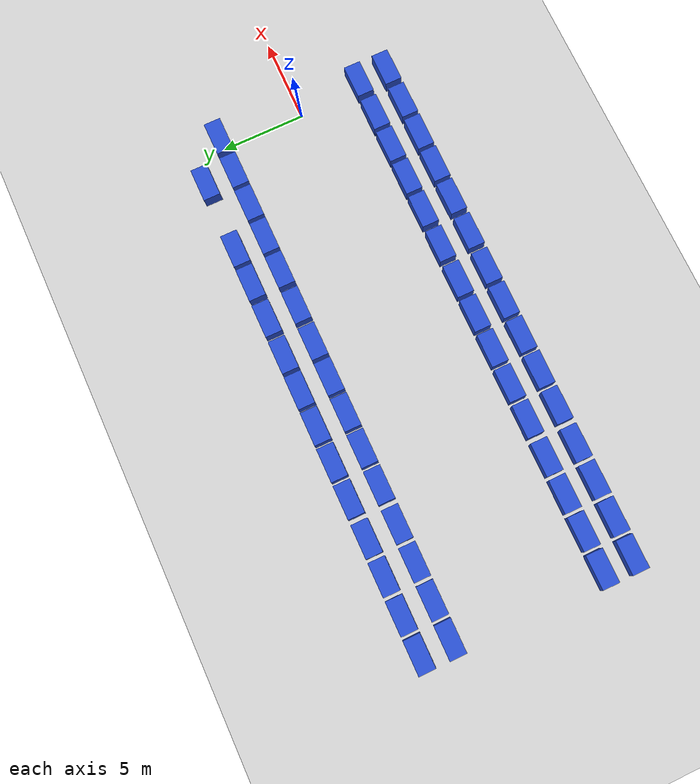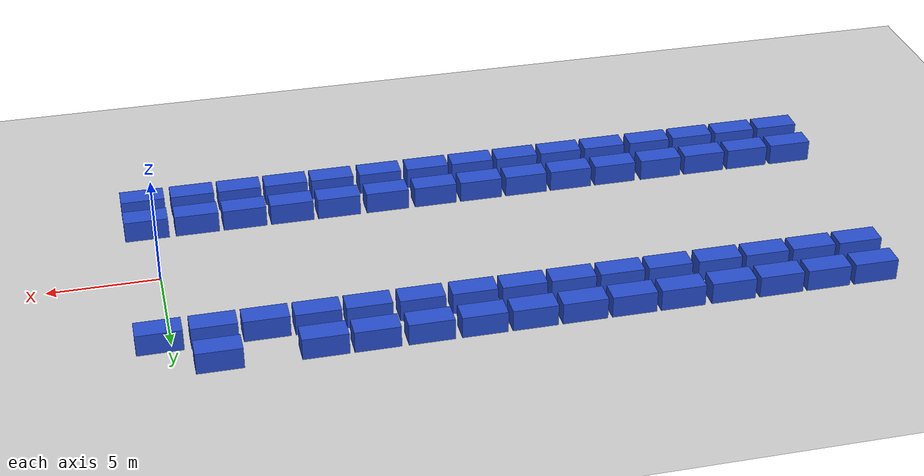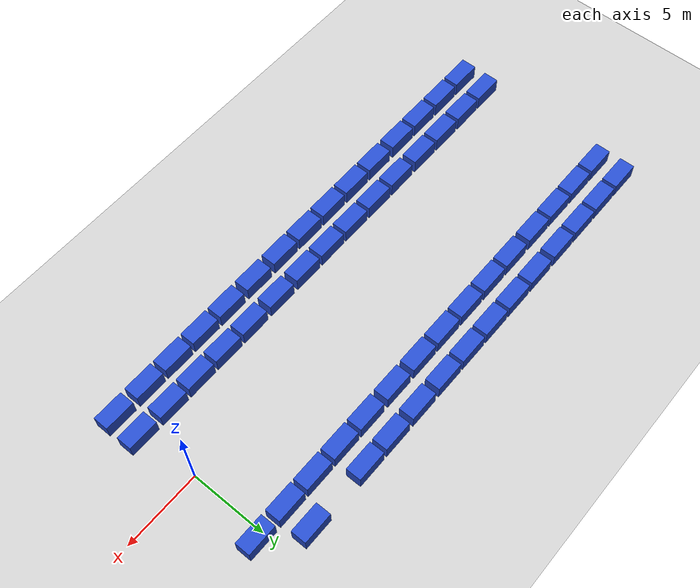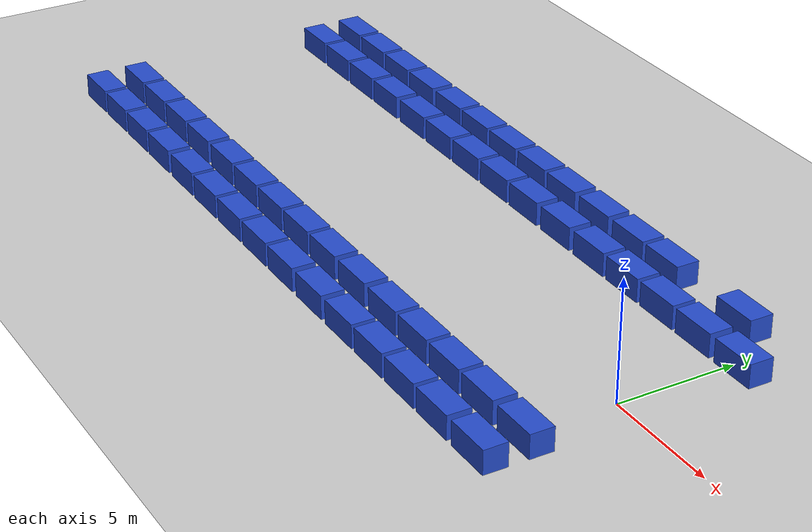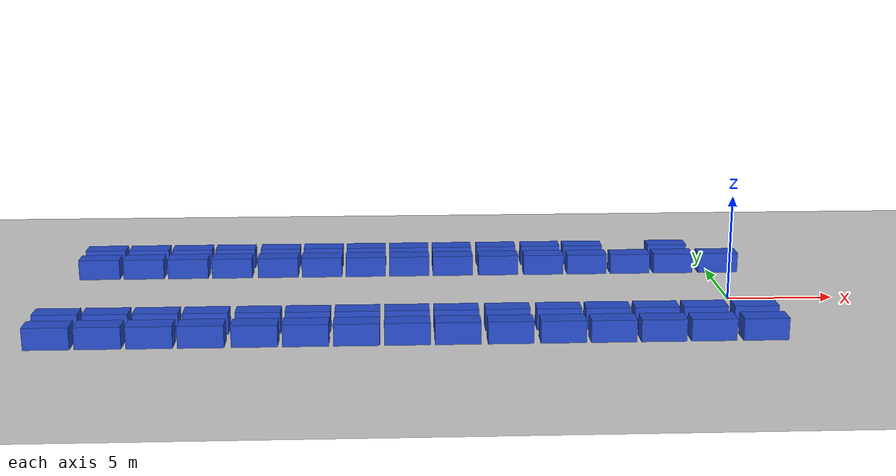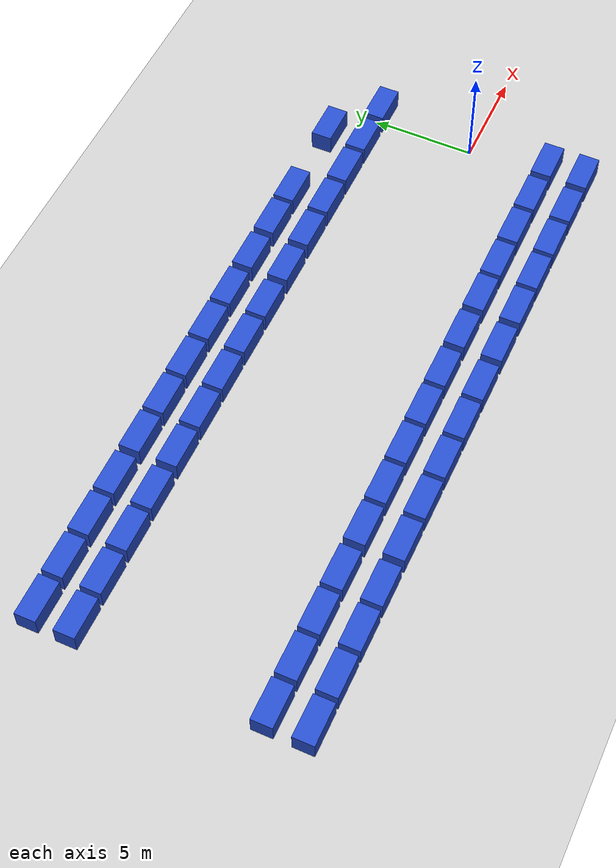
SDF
<sdf version="1.6">
 <world name="default">
  <model name="ground_plane">
   <static>1</static>
   <link name="link">
    <collision name="collision">
     <geometry><plane><normal>0 0 1</normal><size>100 100</size></plane></geometry>
     <surface><friction><ode><mu>100</mu><mu2>50</mu2></ode></friction></surface>
    </collision>
    <visual name="visual">
     <cast_shadows>0</cast_shadows>
     <geometry><plane><normal>0 0 1</normal><size>100 100</size></plane></geometry>
     <material>
      <script><uri>file://media/materials/scripts/gazebo.material</uri><name>Gazebo/Grey</name></script>
     </material>
    </visual>
   </link>
  </model>
  <model name="box116">
   <link name="blue_box">
    <inertial>
     <pose>2 0 0 0 -0 0</pose>
     <mass>1</mass>
     <inertia><ixx>0.17</ixx><ixy>0</ixy><ixz>0</ixz><iyy>0.42</iyy><iyz>0</iyz><izz>0.42</izz></inertia>
    </inertial>
    <collision name="blue_box_collision">
     <pose>2 0 1 0 -0 0</pose>
     <geometry><box><size>2 1 1</size></box></geometry>
    </collision>
    <visual name="blue_box_visual">
     <pose>2 0 1 0 -0 0</pose>
     <geometry><box><size>2 1 1</size></box></geometry>
     <material>
      <script><name>Gazebo/Blue</name><uri>file://media/materials/scripts/gazebo.material</uri></script>
     </material>
    </visual>
    <gravity>0</gravity>
   </link>
   <pose>-32.7 6.79962 -0.500378 -0.000755 0 0</pose>
  </model>
  <model name="box117">
   <link name="blue_box">
    <inertial>
     <pose>2 0 0 0 -0 0</pose>
     <mass>1</mass>
     <inertia><ixx>0.17</ixx><ixy>0</ixy><ixz>0</ixz><iyy>0.42</iyy><iyz>0</iyz><izz>0.42</izz></inertia>
    </inertial>
    <collision name="blue_box_collision">
     <pose>2 0 1 0 -0 0</pose>
     <geometry><box><size>2 1 1</size></box></geometry>
    </collision>
    <visual name="blue_box_visual">
     <pose>2 0 1 0 -0 0</pose>
     <geometry><box><size>2 1 1</size></box></geometry>
     <material>
      <script><name>Gazebo/Blue</name><uri>file://media/materials/scripts/gazebo.material</uri></script>
     </material>
    </visual>
    <gravity>0</gravity>
   </link>
   <pose>-30.5 6.80038 -0.500378 0.000755 -0 0</pose>
  </model>
  <model name="box118">
   <link name="blue_box">
    <inertial>
     <pose>2 0 0 0 -0 0</pose>
     <mass>1</mass>
     <inertia><ixx>0.17</ixx><ixy>0</ixy><ixz>0</ixz><iyy>0.42</iyy><iyz>0</iyz><izz>0.42</izz></inertia>
    </inertial>
    <collision name="blue_box_collision">
     <pose>2 0 1 0 -0 0</pose>
     <geometry><box><size>2 1 1</size></box></geometry>
    </collision>
    <visual name="blue_box_visual">
     <pose>2 0 1 0 -0 0</pose>
     <geometry><box><size>2 1 1</size></box></geometry>
     <material>
      <script><name>Gazebo/Blue</name><uri>file://media/materials/scripts/gazebo.material</uri></script>
     </material>
    </visual>
    <gravity>0</gravity>
   </link>
   <pose>-28.3 6.79962 -0.500378 -0.000755 0 0</pose>
  </model>
  <model name="box119">
   <link name="blue_box">
    <inertial>
     <pose>2 0 0 0 -0 0</pose>
     <mass>1</mass>
     <inertia><ixx>0.17</ixx><ixy>0</ixy><ixz>0</ixz><iyy>0.42</iyy><iyz>0</iyz><izz>0.42</izz></inertia>
    </inertial>
    <collision name="blue_box_collision">
     <pose>2 0 1 0 -0 0</pose>
     <geometry><box><size>2 1 1</size></box></geometry>
    </collision>
    <visual name="blue_box_visual">
     <pose>2 0 1 0 -0 0</pose>
     <geometry><box><size>2 1 1</size></box></geometry>
     <material>
      <script><name>Gazebo/Blue</name><uri>file://media/materials/scripts/gazebo.material</uri></script>
     </material>
    </visual>
    <gravity>0</gravity>
   </link>
   <pose>-26.1 6.80038 -0.500378 0.000755 -0 0</pose>
  </model>
  <model name="box120">
   <link name="blue_box">
    <inertial>
     <pose>2 0 0 0 -0 0</pose>
     <mass>1</mass>
     <inertia><ixx>0.17</ixx><ixy>0</ixy><ixz>0</ixz><iyy>0.42</iyy><iyz>0</iyz><izz>0.42</izz></inertia>
    </inertial>
    <collision name="blue_box_collision">
     <pose>2 0 1 0 -0 0</pose>
     <geometry><box><size>2 1 1</size></box></geometry>
    </collision>
    <visual name="blue_box_visual">
     <pose>2 0 1 0 -0 0</pose>
     <geometry><box><size>2 1 1</size></box></geometry>
     <material>
      <script><name>Gazebo/Blue</name><uri>file://media/materials/scripts/gazebo.material</uri></script>
     </material>
    </visual>
    <gravity>0</gravity>
   </link>
   <pose>-23.8 6.79962 -0.500378 -0.000755 0 0</pose>
  </model>
  <model name="box121">
   <link name="blue_box">
    <inertial>
     <pose>2 0 0 0 -0 0</pose>
     <mass>1</mass>
     <inertia><ixx>0.17</ixx><ixy>0</ixy><ixz>0</ixz><iyy>0.42</iyy><iyz>0</iyz><izz>0.42</izz></inertia>
    </inertial>
    <collision name="blue_box_collision">
     <pose>2 0 1 0 -0 0</pose>
     <geometry><box><size>2 1 1</size></box></geometry>
    </collision>
    <visual name="blue_box_visual">
     <pose>2 0 1 0 -0 0</pose>
     <geometry><box><size>2 1 1</size></box></geometry>
     <material>
      <script><name>Gazebo/Blue</name><uri>file://media/materials/scripts/gazebo.material</uri></script>
     </material>
    </visual>
    <gravity>0</gravity>
   </link>
   <pose>-21.6 6.79962 -0.500378 -0.000755 0 0</pose>
  </model>
  <model name="box122">
   <link name="blue_box">
    <inertial>
     <pose>2 0 0 0 -0 0</pose>
     <mass>1</mass>
     <inertia><ixx>0.17</ixx><ixy>0</ixy><ixz>0</ixz><iyy>0.42</iyy><iyz>0</iyz><izz>0.42</izz></inertia>
    </inertial>
    <collision name="blue_box_collision">
     <pose>2 0 1 0 -0 0</pose>
     <geometry><box><size>2 1 1</size></box></geometry>
    </collision>
    <visual name="blue_box_visual">
     <pose>2 0 1 0 -0 0</pose>
     <geometry><box><size>2 1 1</size></box></geometry>
     <material>
      <script><name>Gazebo/Blue</name><uri>file://media/materials/scripts/gazebo.material</uri></script>
     </material>
    </visual>
    <gravity>0</gravity>
   </link>
   <pose>-19.4 6.79962 -0.500378 -0.000755 0 0</pose>
  </model>
  <model name="box123">
   <link name="blue_box">
    <inertial>
     <pose>2 0 0 0 -0 0</pose>
     <mass>1</mass>
     <inertia><ixx>0.17</ixx><ixy>0</ixy><ixz>0</ixz><iyy>0.42</iyy><iyz>0</iyz><izz>0.42</izz></inertia>
    </inertial>
    <collision name="blue_box_collision">
     <pose>2 0 1 0 -0 0</pose>
     <geometry><box><size>2 1 1</size></box></geometry>
    </collision>
    <visual name="blue_box_visual">
     <pose>2 0 1 0 -0 0</pose>
     <geometry><box><size>2 1 1</size></box></geometry>
     <material>
      <script><name>Gazebo/Blue</name><uri>file://media/materials/scripts/gazebo.material</uri></script>
     </material>
    </visual>
    <gravity>0</gravity>
   </link>
   <pose>-17.2 6.80038 -0.500378 0.000755 -0 0</pose>
  </model>
  <model name="box124">
   <link name="blue_box">
    <inertial>
     <pose>2 0 0 0 -0 0</pose>
     <mass>1</mass>
     <inertia><ixx>0.17</ixx><ixy>0</ixy><ixz>0</ixz><iyy>0.42</iyy><iyz>0</iyz><izz>0.42</izz></inertia>
    </inertial>
    <collision name="blue_box_collision">
     <pose>2 0 1 0 -0 0</pose>
     <geometry><box><size>2 1 1</size></box></geometry>
    </collision>
    <visual name="blue_box_visual">
     <pose>2 0 1 0 -0 0</pose>
     <geometry><box><size>2 1 1</size></box></geometry>
     <material>
      <script><name>Gazebo/Blue</name><uri>file://media/materials/scripts/gazebo.material</uri></script>
     </material>
    </visual>
    <gravity>0</gravity>
   </link>
   <pose>-15 6.80038 -0.500378 0.000755 -0 0</pose>
  </model>
  <model name="box125">
   <link name="blue_box">
    <inertial>
     <pose>2 0 0 0 -0 0</pose>
     <mass>1</mass>
     <inertia><ixx>0.17</ixx><ixy>0</ixy><ixz>0</ixz><iyy>0.42</iyy><iyz>0</iyz><izz>0.42</izz></inertia>
    </inertial>
    <collision name="blue_box_collision">
     <pose>2 0 1 0 -0 0</pose>
     <geometry><box><size>2 1 1</size></box></geometry>
    </collision>
    <visual name="blue_box_visual">
     <pose>2 0 1 0 -0 0</pose>
     <geometry><box><size>2 1 1</size></box></geometry>
     <material>
      <script><name>Gazebo/Blue</name><uri>file://media/materials/scripts/gazebo.material</uri></script>
     </material>
    </visual>
    <gravity>0</gravity>
   </link>
   <pose>-12.7 6.80038 -0.500378 0.000755 -0 0</pose>
  </model>
  <model name="box126">
   <link name="blue_box">
    <inertial>
     <pose>2 0 0 0 -0 0</pose>
     <mass>1</mass>
     <inertia><ixx>0.17</ixx><ixy>0</ixy><ixz>0</ixz><iyy>0.42</iyy><iyz>0</iyz><izz>0.42</izz></inertia>
    </inertial>
    <collision name="blue_box_collision">
     <pose>2 0 1 0 -0 0</pose>
     <geometry><box><size>2 1 1</size></box></geometry>
    </collision>
    <visual name="blue_box_visual">
     <pose>2 0 1 0 -0 0</pose>
     <geometry><box><size>2 1 1</size></box></geometry>
     <material>
      <script><name>Gazebo/Blue</name><uri>file://media/materials/scripts/gazebo.material</uri></script>
     </material>
    </visual>
    <gravity>0</gravity>
   </link>
   <pose>-10.4 6.79962 -0.500378 -0.000755 0 0</pose>
  </model>
  <model name="box127">
   <link name="blue_box">
    <inertial>
     <pose>2 0 0 0 -0 0</pose>
     <mass>1</mass>
     <inertia><ixx>0.17</ixx><ixy>0</ixy><ixz>0</ixz><iyy>0.42</iyy><iyz>0</iyz><izz>0.42</izz></inertia>
    </inertial>
    <collision name="blue_box_collision">
     <pose>2 0 1 0 -0 0</pose>
     <geometry><box><size>2 1 1</size></box></geometry>
    </collision>
    <visual name="blue_box_visual">
     <pose>2 0 1 0 -0 0</pose>
     <geometry><box><size>2 1 1</size></box></geometry>
     <material>
      <script><name>Gazebo/Blue</name><uri>file://media/materials/scripts/gazebo.material</uri></script>
     </material>
    </visual>
    <gravity>0</gravity>
   </link>
   <pose>-8.2 6.79962 -0.500378 -0.000755 0 0</pose>
  </model>
  <model name="box129">
   <link name="blue_box">
    <inertial>
     <pose>2 0 0 0 -0 0</pose>
     <mass>1</mass>
     <inertia><ixx>0.17</ixx><ixy>0</ixy><ixz>0</ixz><iyy>0.42</iyy><iyz>0</iyz><izz>0.42</izz></inertia>
    </inertial>
    <collision name="blue_box_collision">
     <pose>2 0 1 0 -0 0</pose>
     <geometry><box><size>2 1 1</size></box></geometry>
    </collision>
    <visual name="blue_box_visual">
     <pose>2 0 1 0 -0 0</pose>
     <geometry><box><size>2 1 1</size></box></geometry>
     <material>
      <script><name>Gazebo/Blue</name><uri>file://media/materials/scripts/gazebo.material</uri></script>
     </material>
    </visual>
    <gravity>0</gravity>
   </link>
   <pose>-3.8 6.79962 -0.500378 -0.000755 0 0</pose>
  </model>
  <model name="box145">
   <link name="blue_box">
    <inertial>
     <pose>2 0 0 0 -0 0</pose>
     <mass>1</mass>
     <inertia><ixx>0.17</ixx><ixy>0</ixy><ixz>0</ixz><iyy>0.42</iyy><iyz>0</iyz><izz>0.42</izz></inertia>
    </inertial>
    <collision name="blue_box_collision">
     <pose>2 0 1 0 -0 0</pose>
     <geometry><box><size>2 1 1</size></box></geometry>
    </collision>
    <visual name="blue_box_visual">
     <pose>2 0 1 0 -0 0</pose>
     <geometry><box><size>2 1 1</size></box></geometry>
     <material>
      <script><name>Gazebo/Blue</name><uri>file://media/materials/scripts/gazebo.material</uri></script>
     </material>
    </visual>
    <gravity>0</gravity>
   </link>
   <pose>-32.7 4.99962 -0.500378 -0.000755 0 0</pose>
  </model>
  <model name="box146">
   <link name="blue_box">
    <inertial>
     <pose>2 0 0 0 -0 0</pose>
     <mass>1</mass>
     <inertia><ixx>0.17</ixx><ixy>0</ixy><ixz>0</ixz><iyy>0.42</iyy><iyz>0</iyz><izz>0.42</izz></inertia>
    </inertial>
    <collision name="blue_box_collision">
     <pose>2 0 1 0 -0 0</pose>
     <geometry><box><size>2 1 1</size></box></geometry>
    </collision>
    <visual name="blue_box_visual">
     <pose>2 0 1 0 -0 0</pose>
     <geometry><box><size>2 1 1</size></box></geometry>
     <material>
      <script><name>Gazebo/Blue</name><uri>file://media/materials/scripts/gazebo.material</uri></script>
     </material>
    </visual>
    <gravity>0</gravity>
   </link>
   <pose>-30.5 5.00038 -0.500378 0.000755 -0 0</pose>
  </model>
  <model name="box147">
   <link name="blue_box">
    <inertial>
     <pose>2 0 0 0 -0 0</pose>
     <mass>1</mass>
     <inertia><ixx>0.17</ixx><ixy>0</ixy><ixz>0</ixz><iyy>0.42</iyy><iyz>0</iyz><izz>0.42</izz></inertia>
    </inertial>
    <collision name="blue_box_collision">
     <pose>2 0 1 0 -0 0</pose>
     <geometry><box><size>2 1 1</size></box></geometry>
    </collision>
    <visual name="blue_box_visual">
     <pose>2 0 1 0 -0 0</pose>
     <geometry><box><size>2 1 1</size></box></geometry>
     <material>
      <script><name>Gazebo/Blue</name><uri>file://media/materials/scripts/gazebo.material</uri></script>
     </material>
    </visual>
    <gravity>0</gravity>
   </link>
   <pose>-28.3 5.00038 -0.500378 0.000755 -0 0</pose>
  </model>
  <model name="box148">
   <link name="blue_box">
    <inertial>
     <pose>2 0 0 0 -0 0</pose>
     <mass>1</mass>
     <inertia><ixx>0.17</ixx><ixy>0</ixy><ixz>0</ixz><iyy>0.42</iyy><iyz>0</iyz><izz>0.42</izz></inertia>
    </inertial>
    <collision name="blue_box_collision">
     <pose>2 0 1 0 -0 0</pose>
     <geometry><box><size>2 1 1</size></box></geometry>
    </collision>
    <visual name="blue_box_visual">
     <pose>2 0 1 0 -0 0</pose>
     <geometry><box><size>2 1 1</size></box></geometry>
     <material>
      <script><name>Gazebo/Blue</name><uri>file://media/materials/scripts/gazebo.material</uri></script>
     </material>
    </visual>
    <gravity>0</gravity>
   </link>
   <pose>-26.1 5.00038 -0.500378 0.000755 -0 0</pose>
  </model>
  <model name="box149">
   <link name="blue_box">
    <inertial>
     <pose>2 0 0 0 -0 0</pose>
     <mass>1</mass>
     <inertia><ixx>0.17</ixx><ixy>0</ixy><ixz>0</ixz><iyy>0.42</iyy><iyz>0</iyz><izz>0.42</izz></inertia>
    </inertial>
    <collision name="blue_box_collision">
     <pose>2 0 1 0 -0 0</pose>
     <geometry><box><size>2 1 1</size></box></geometry>
    </collision>
    <visual name="blue_box_visual">
     <pose>2 0 1 0 -0 0</pose>
     <geometry><box><size>2 1 1</size></box></geometry>
     <material>
      <script><name>Gazebo/Blue</name><uri>file://media/materials/scripts/gazebo.material</uri></script>
     </material>
    </visual>
    <gravity>0</gravity>
   </link>
   <pose>-23.8 5.00038 -0.500378 0.000755 -0 0</pose>
  </model>
  <model name="box150">
   <link name="blue_box">
    <inertial>
     <pose>2 0 0 0 -0 0</pose>
     <mass>1</mass>
     <inertia><ixx>0.17</ixx><ixy>0</ixy><ixz>0</ixz><iyy>0.42</iyy><iyz>0</iyz><izz>0.42</izz></inertia>
    </inertial>
    <collision name="blue_box_collision">
     <pose>2 0 1 0 -0 0</pose>
     <geometry><box><size>2 1 1</size></box></geometry>
    </collision>
    <visual name="blue_box_visual">
     <pose>2 0 1 0 -0 0</pose>
     <geometry><box><size>2 1 1</size></box></geometry>
     <material>
      <script><name>Gazebo/Blue</name><uri>file://media/materials/scripts/gazebo.material</uri></script>
     </material>
    </visual>
    <gravity>0</gravity>
   </link>
   <pose>-21.6 5.00038 -0.500378 0.000755 -0 0</pose>
  </model>
  <model name="box151">
   <link name="blue_box">
    <inertial>
     <pose>2 0 0 0 -0 0</pose>
     <mass>1</mass>
     <inertia><ixx>0.17</ixx><ixy>0</ixy><ixz>0</ixz><iyy>0.42</iyy><iyz>0</iyz><izz>0.42</izz></inertia>
    </inertial>
    <collision name="blue_box_collision">
     <pose>2 0 1 0 -0 0</pose>
     <geometry><box><size>2 1 1</size></box></geometry>
    </collision>
    <visual name="blue_box_visual">
     <pose>2 0 1 0 -0 0</pose>
     <geometry><box><size>2 1 1</size></box></geometry>
     <material>
      <script><name>Gazebo/Blue</name><uri>file://media/materials/scripts/gazebo.material</uri></script>
     </material>
    </visual>
    <gravity>0</gravity>
   </link>
   <pose>-19.4 5.00038 -0.500378 0.000755 -0 0</pose>
  </model>
  <model name="box152">
   <link name="blue_box">
    <inertial>
     <pose>2 0 0 0 -0 0</pose>
     <mass>1</mass>
     <inertia><ixx>0.17</ixx><ixy>0</ixy><ixz>0</ixz><iyy>0.42</iyy><iyz>0</iyz><izz>0.42</izz></inertia>
    </inertial>
    <collision name="blue_box_collision">
     <pose>2 0 1 0 -0 0</pose>
     <geometry><box><size>2 1 1</size></box></geometry>
    </collision>
    <visual name="blue_box_visual">
     <pose>2 0 1 0 -0 0</pose>
     <geometry><box><size>2 1 1</size></box></geometry>
     <material>
      <script><name>Gazebo/Blue</name><uri>file://media/materials/scripts/gazebo.material</uri></script>
     </material>
    </visual>
    <gravity>0</gravity>
   </link>
   <pose>-17.2 4.99962 -0.500378 -0.000755 0 0</pose>
  </model>
  <model name="box153">
   <link name="blue_box">
    <inertial>
     <pose>2 0 0 0 -0 0</pose>
     <mass>1</mass>
     <inertia><ixx>0.17</ixx><ixy>0</ixy><ixz>0</ixz><iyy>0.42</iyy><iyz>0</iyz><izz>0.42</izz></inertia>
    </inertial>
    <collision name="blue_box_collision">
     <pose>2 0 1 0 -0 0</pose>
     <geometry><box><size>2 1 1</size></box></geometry>
    </collision>
    <visual name="blue_box_visual">
     <pose>2 0 1 0 -0 0</pose>
     <geometry><box><size>2 1 1</size></box></geometry>
     <material>
      <script><name>Gazebo/Blue</name><uri>file://media/materials/scripts/gazebo.material</uri></script>
     </material>
    </visual>
    <gravity>0</gravity>
   </link>
   <pose>-15 4.99962 -0.500378 -0.000755 0 0</pose>
  </model>
  <model name="box154">
   <link name="blue_box">
    <inertial>
     <pose>2 0 0 0 -0 0</pose>
     <mass>1</mass>
     <inertia><ixx>0.17</ixx><ixy>0</ixy><ixz>0</ixz><iyy>0.42</iyy><iyz>0</iyz><izz>0.42</izz></inertia>
    </inertial>
    <collision name="blue_box_collision">
     <pose>2 0 1 0 -0 0</pose>
     <geometry><box><size>2 1 1</size></box></geometry>
    </collision>
    <visual name="blue_box_visual">
     <pose>2 0 1 0 -0 0</pose>
     <geometry><box><size>2 1 1</size></box></geometry>
     <material>
      <script><name>Gazebo/Blue</name><uri>file://media/materials/scripts/gazebo.material</uri></script>
     </material>
    </visual>
    <gravity>0</gravity>
   </link>
   <pose>-12.7 4.99962 -0.500378 -0.000755 0 0</pose>
  </model>
  <model name="box155">
   <link name="blue_box">
    <inertial>
     <pose>2 0 0 0 -0 0</pose>
     <mass>1</mass>
     <inertia><ixx>0.17</ixx><ixy>0</ixy><ixz>0</ixz><iyy>0.42</iyy><iyz>0</iyz><izz>0.42</izz></inertia>
    </inertial>
    <collision name="blue_box_collision">
     <pose>2 0 1 0 -0 0</pose>
     <geometry><box><size>2 1 1</size></box></geometry>
    </collision>
    <visual name="blue_box_visual">
     <pose>2 0 1 0 -0 0</pose>
     <geometry><box><size>2 1 1</size></box></geometry>
     <material>
      <script><name>Gazebo/Blue</name><uri>file://media/materials/scripts/gazebo.material</uri></script>
     </material>
    </visual>
    <gravity>0</gravity>
   </link>
   <pose>-10.4 5.00038 -0.500378 0.000755 -0 0</pose>
  </model>
  <model name="box156">
   <link name="blue_box">
    <inertial>
     <pose>2 0 0 0 -0 0</pose>
     <mass>1</mass>
     <inertia><ixx>0.17</ixx><ixy>0</ixy><ixz>0</ixz><iyy>0.42</iyy><iyz>0</iyz><izz>0.42</izz></inertia>
    </inertial>
    <collision name="blue_box_collision">
     <pose>2 0 1 0 -0 0</pose>
     <geometry><box><size>2 1 1</size></box></geometry>
    </collision>
    <visual name="blue_box_visual">
     <pose>2 0 1 0 -0 0</pose>
     <geometry><box><size>2 1 1</size></box></geometry>
     <material>
      <script><name>Gazebo/Blue</name><uri>file://media/materials/scripts/gazebo.material</uri></script>
     </material>
    </visual>
    <gravity>0</gravity>
   </link>
   <pose>-8.2 4.99962 -0.500378 -0.000755 0 0</pose>
  </model>
  <model name="box157">
   <link name="blue_box">
    <inertial>
     <pose>2 0 0 0 -0 0</pose>
     <mass>1</mass>
     <inertia><ixx>0.17</ixx><ixy>0</ixy><ixz>0</ixz><iyy>0.42</iyy><iyz>0</iyz><izz>0.42</izz></inertia>
    </inertial>
    <collision name="blue_box_collision">
     <pose>2 0 1 0 -0 0</pose>
     <geometry><box><size>2 1 1</size></box></geometry>
    </collision>
    <visual name="blue_box_visual">
     <pose>2 0 1 0 -0 0</pose>
     <geometry><box><size>2 1 1</size></box></geometry>
     <material>
      <script><name>Gazebo/Blue</name><uri>file://media/materials/scripts/gazebo.material</uri></script>
     </material>
    </visual>
    <gravity>0</gravity>
   </link>
   <pose>-6 4.99962 -0.500378 -0.000755 0 0</pose>
  </model>
  <model name="box158">
   <link name="blue_box">
    <inertial>
     <pose>2 0 0 0 -0 0</pose>
     <mass>1</mass>
     <inertia><ixx>0.17</ixx><ixy>0</ixy><ixz>0</ixz><iyy>0.42</iyy><iyz>0</iyz><izz>0.42</izz></inertia>
    </inertial>
    <collision name="blue_box_collision">
     <pose>2 0 1 0 -0 0</pose>
     <geometry><box><size>2 1 1</size></box></geometry>
    </collision>
    <visual name="blue_box_visual">
     <pose>2 0 1 0 -0 0</pose>
     <geometry><box><size>2 1 1</size></box></geometry>
     <material>
      <script><name>Gazebo/Blue</name><uri>file://media/materials/scripts/gazebo.material</uri></script>
     </material>
    </visual>
    <gravity>0</gravity>
   </link>
   <pose>-3.8 5.00038 -0.500378 0.000755 -0 0</pose>
  </model>
  <model name="box159">
   <link name="blue_box">
    <inertial>
     <pose>2 0 0 0 -0 0</pose>
     <mass>1</mass>
     <inertia><ixx>0.17</ixx><ixy>0</ixy><ixz>0</ixz><iyy>0.42</iyy><iyz>0</iyz><izz>0.42</izz></inertia>
    </inertial>
    <collision name="blue_box_collision">
     <pose>2 0 1 0 -0 0</pose>
     <geometry><box><size>2 1 1</size></box></geometry>
    </collision>
    <visual name="blue_box_visual">
     <pose>2 0 1 0 -0 0</pose>
     <geometry><box><size>2 1 1</size></box></geometry>
     <material>
      <script><name>Gazebo/Blue</name><uri>file://media/materials/scripts/gazebo.material</uri></script>
     </material>
    </visual>
    <gravity>0</gravity>
   </link>
   <pose>-1.5 5.00038 -0.500378 0.000755 -0 0</pose>
  </model>
  <model name="box174">
   <link name="blue_box">
    <inertial>
     <pose>2 0 0 0 -0 0</pose>
     <mass>1</mass>
     <inertia><ixx>0.17</ixx><ixy>0</ixy><ixz>0</ixz><iyy>0.42</iyy><iyz>0</iyz><izz>0.42</izz></inertia>
    </inertial>
    <collision name="blue_box_collision">
     <pose>2 0 1 0 -0 0</pose>
     <geometry><box><size>2 1 1</size></box></geometry>
    </collision>
    <visual name="blue_box_visual">
     <pose>2 0 1 0 -0 0</pose>
     <geometry><box><size>2 1 1</size></box></geometry>
     <material>
      <script><name>Gazebo/Blue</name><uri>file://media/materials/scripts/gazebo.material</uri></script>
     </material>
    </visual>
    <gravity>0</gravity>
   </link>
   <pose>-32.9 -3.90038 -0.500378 -0.000755 0 0</pose>
  </model>
  <model name="box175">
   <link name="blue_box">
    <inertial>
     <pose>2 0 0 0 -0 0</pose>
     <mass>1</mass>
     <inertia><ixx>0.17</ixx><ixy>0</ixy><ixz>0</ixz><iyy>0.42</iyy><iyz>0</iyz><izz>0.42</izz></inertia>
    </inertial>
    <collision name="blue_box_collision">
     <pose>2 0 1 0 -0 0</pose>
     <geometry><box><size>2 1 1</size></box></geometry>
    </collision>
    <visual name="blue_box_visual">
     <pose>2 0 1 0 -0 0</pose>
     <geometry><box><size>2 1 1</size></box></geometry>
     <material>
      <script><name>Gazebo/Blue</name><uri>file://media/materials/scripts/gazebo.material</uri></script>
     </material>
    </visual>
    <gravity>0</gravity>
   </link>
   <pose>-30.7 -3.89962 -0.500378 0.000755 -0 0</pose>
  </model>
  <model name="box176">
   <link name="blue_box">
    <inertial>
     <pose>2 0 0 0 -0 0</pose>
     <mass>1</mass>
     <inertia><ixx>0.17</ixx><ixy>0</ixy><ixz>0</ixz><iyy>0.42</iyy><iyz>0</iyz><izz>0.42</izz></inertia>
    </inertial>
    <collision name="blue_box_collision">
     <pose>2 0 1 0 -0 0</pose>
     <geometry><box><size>2 1 1</size></box></geometry>
    </collision>
    <visual name="blue_box_visual">
     <pose>2 0 1 0 -0 0</pose>
     <geometry><box><size>2 1 1</size></box></geometry>
     <material>
      <script><name>Gazebo/Blue</name><uri>file://media/materials/scripts/gazebo.material</uri></script>
     </material>
    </visual>
    <gravity>0</gravity>
   </link>
   <pose>-28.5 -3.90038 -0.500378 -0.000755 0 0</pose>
  </model>
  <model name="box177">
   <link name="blue_box">
    <inertial>
     <pose>2 0 0 0 -0 0</pose>
     <mass>1</mass>
     <inertia><ixx>0.17</ixx><ixy>0</ixy><ixz>0</ixz><iyy>0.42</iyy><iyz>0</iyz><izz>0.42</izz></inertia>
    </inertial>
    <collision name="blue_box_collision">
     <pose>2 0 1 0 -0 0</pose>
     <geometry><box><size>2 1 1</size></box></geometry>
    </collision>
    <visual name="blue_box_visual">
     <pose>2 0 1 0 -0 0</pose>
     <geometry><box><size>2 1 1</size></box></geometry>
     <material>
      <script><name>Gazebo/Blue</name><uri>file://media/materials/scripts/gazebo.material</uri></script>
     </material>
    </visual>
    <gravity>0</gravity>
   </link>
   <pose>-26.3 -3.89962 -0.500378 0.000755 -0 0</pose>
  </model>
  <model name="box178">
   <link name="blue_box">
    <inertial>
     <pose>2 0 0 0 -0 0</pose>
     <mass>1</mass>
     <inertia><ixx>0.17</ixx><ixy>0</ixy><ixz>0</ixz><iyy>0.42</iyy><iyz>0</iyz><izz>0.42</izz></inertia>
    </inertial>
    <collision name="blue_box_collision">
     <pose>2 0 1 0 -0 0</pose>
     <geometry><box><size>2 1 1</size></box></geometry>
    </collision>
    <visual name="blue_box_visual">
     <pose>2 0 1 0 -0 0</pose>
     <geometry><box><size>2 1 1</size></box></geometry>
     <material>
      <script><name>Gazebo/Blue</name><uri>file://media/materials/scripts/gazebo.material</uri></script>
     </material>
    </visual>
    <gravity>0</gravity>
   </link>
   <pose>-24 -3.90038 -0.500378 -0.000755 0 0</pose>
  </model>
  <model name="box179">
   <link name="blue_box">
    <inertial>
     <pose>2 0 0 0 -0 0</pose>
     <mass>1</mass>
     <inertia><ixx>0.17</ixx><ixy>0</ixy><ixz>0</ixz><iyy>0.42</iyy><iyz>0</iyz><izz>0.42</izz></inertia>
    </inertial>
    <collision name="blue_box_collision">
     <pose>2 0 1 0 -0 0</pose>
     <geometry><box><size>2 1 1</size></box></geometry>
    </collision>
    <visual name="blue_box_visual">
     <pose>2 0 1 0 -0 0</pose>
     <geometry><box><size>2 1 1</size></box></geometry>
     <material>
      <script><name>Gazebo/Blue</name><uri>file://media/materials/scripts/gazebo.material</uri></script>
     </material>
    </visual>
    <gravity>0</gravity>
   </link>
   <pose>-21.8 -3.89962 -0.500378 0.000755 -0 0</pose>
  </model>
  <model name="box180">
   <link name="blue_box">
    <inertial>
     <pose>2 0 0 0 -0 0</pose>
     <mass>1</mass>
     <inertia><ixx>0.17</ixx><ixy>0</ixy><ixz>0</ixz><iyy>0.42</iyy><iyz>0</iyz><izz>0.42</izz></inertia>
    </inertial>
    <collision name="blue_box_collision">
     <pose>2 0 1 0 -0 0</pose>
     <geometry><box><size>2 1 1</size></box></geometry>
    </collision>
    <visual name="blue_box_visual">
     <pose>2 0 1 0 -0 0</pose>
     <geometry><box><size>2 1 1</size></box></geometry>
     <material>
      <script><name>Gazebo/Blue</name><uri>file://media/materials/scripts/gazebo.material</uri></script>
     </material>
    </visual>
    <gravity>0</gravity>
   </link>
   <pose>-19.6 -3.89962 -0.500378 0.000755 -0 0</pose>
  </model>
  <model name="box181">
   <link name="blue_box">
    <inertial>
     <pose>2 0 0 0 -0 0</pose>
     <mass>1</mass>
     <inertia><ixx>0.17</ixx><ixy>0</ixy><ixz>0</ixz><iyy>0.42</iyy><iyz>0</iyz><izz>0.42</izz></inertia>
    </inertial>
    <collision name="blue_box_collision">
     <pose>2 0 1 0 -0 0</pose>
     <geometry><box><size>2 1 1</size></box></geometry>
    </collision>
    <visual name="blue_box_visual">
     <pose>2 0 1 0 -0 0</pose>
     <geometry><box><size>2 1 1</size></box></geometry>
     <material>
      <script><name>Gazebo/Blue</name><uri>file://media/materials/scripts/gazebo.material</uri></script>
     </material>
    </visual>
    <gravity>0</gravity>
   </link>
   <pose>-17.4 -3.90038 -0.500378 -0.000755 0 0</pose>
  </model>
  <model name="box182">
   <link name="blue_box">
    <inertial>
     <pose>2 0 0 0 -0 0</pose>
     <mass>1</mass>
     <inertia><ixx>0.17</ixx><ixy>0</ixy><ixz>0</ixz><iyy>0.42</iyy><iyz>0</iyz><izz>0.42</izz></inertia>
    </inertial>
    <collision name="blue_box_collision">
     <pose>2 0 1 0 -0 0</pose>
     <geometry><box><size>2 1 1</size></box></geometry>
    </collision>
    <visual name="blue_box_visual">
     <pose>2 0 1 0 -0 0</pose>
     <geometry><box><size>2 1 1</size></box></geometry>
     <material>
      <script><name>Gazebo/Blue</name><uri>file://media/materials/scripts/gazebo.material</uri></script>
     </material>
    </visual>
    <gravity>0</gravity>
   </link>
   <pose>-15.2 -3.90038 -0.500378 -0.000755 0 0</pose>
  </model>
  <model name="box183">
   <link name="blue_box">
    <inertial>
     <pose>2 0 0 0 -0 0</pose>
     <mass>1</mass>
     <inertia><ixx>0.17</ixx><ixy>0</ixy><ixz>0</ixz><iyy>0.42</iyy><iyz>0</iyz><izz>0.42</izz></inertia>
    </inertial>
    <collision name="blue_box_collision">
     <pose>2 0 1 0 -0 0</pose>
     <geometry><box><size>2 1 1</size></box></geometry>
    </collision>
    <visual name="blue_box_visual">
     <pose>2 0 1 0 -0 0</pose>
     <geometry><box><size>2 1 1</size></box></geometry>
     <material>
      <script><name>Gazebo/Blue</name><uri>file://media/materials/scripts/gazebo.material</uri></script>
     </material>
    </visual>
    <gravity>0</gravity>
   </link>
   <pose>-12.9 -3.90038 -0.500378 -0.000755 0 0</pose>
  </model>
  <model name="box184">
   <link name="blue_box">
    <inertial>
     <pose>2 0 0 0 -0 0</pose>
     <mass>1</mass>
     <inertia><ixx>0.17</ixx><ixy>0</ixy><ixz>0</ixz><iyy>0.42</iyy><iyz>0</iyz><izz>0.42</izz></inertia>
    </inertial>
    <collision name="blue_box_collision">
     <pose>2 0 1 0 -0 0</pose>
     <geometry><box><size>2 1 1</size></box></geometry>
    </collision>
    <visual name="blue_box_visual">
     <pose>2 0 1 0 -0 0</pose>
     <geometry><box><size>2 1 1</size></box></geometry>
     <material>
      <script><name>Gazebo/Blue</name><uri>file://media/materials/scripts/gazebo.material</uri></script>
     </material>
    </visual>
    <gravity>0</gravity>
   </link>
   <pose>-10.6 -3.89962 -0.500378 0.000755 -0 0</pose>
  </model>
  <model name="box185">
   <link name="blue_box">
    <inertial>
     <pose>2 0 0 0 -0 0</pose>
     <mass>1</mass>
     <inertia><ixx>0.17</ixx><ixy>0</ixy><ixz>0</ixz><iyy>0.42</iyy><iyz>0</iyz><izz>0.42</izz></inertia>
    </inertial>
    <collision name="blue_box_collision">
     <pose>2 0 1 0 -0 0</pose>
     <geometry><box><size>2 1 1</size></box></geometry>
    </collision>
    <visual name="blue_box_visual">
     <pose>2 0 1 0 -0 0</pose>
     <geometry><box><size>2 1 1</size></box></geometry>
     <material>
      <script><name>Gazebo/Blue</name><uri>file://media/materials/scripts/gazebo.material</uri></script>
     </material>
    </visual>
    <gravity>0</gravity>
   </link>
   <pose>-8.4 -3.90038 -0.500378 -0.000755 0 0</pose>
  </model>
  <model name="box186">
   <link name="blue_box">
    <inertial>
     <pose>2 0 0 0 -0 0</pose>
     <mass>1</mass>
     <inertia><ixx>0.17</ixx><ixy>0</ixy><ixz>0</ixz><iyy>0.42</iyy><iyz>0</iyz><izz>0.42</izz></inertia>
    </inertial>
    <collision name="blue_box_collision">
     <pose>2 0 1 0 -0 0</pose>
     <geometry><box><size>2 1 1</size></box></geometry>
    </collision>
    <visual name="blue_box_visual">
     <pose>2 0 1 0 -0 0</pose>
     <geometry><box><size>2 1 1</size></box></geometry>
     <material>
      <script><name>Gazebo/Blue</name><uri>file://media/materials/scripts/gazebo.material</uri></script>
     </material>
    </visual>
    <gravity>0</gravity>
   </link>
   <pose>-6.2 -3.90038 -0.500378 -0.000755 0 0</pose>
  </model>
  <model name="box187">
   <link name="blue_box">
    <inertial>
     <pose>2 0 0 0 -0 0</pose>
     <mass>1</mass>
     <inertia><ixx>0.17</ixx><ixy>0</ixy><ixz>0</ixz><iyy>0.42</iyy><iyz>0</iyz><izz>0.42</izz></inertia>
    </inertial>
    <collision name="blue_box_collision">
     <pose>2 0 1 0 -0 0</pose>
     <geometry><box><size>2 1 1</size></box></geometry>
    </collision>
    <visual name="blue_box_visual">
     <pose>2 0 1 0 -0 0</pose>
     <geometry><box><size>2 1 1</size></box></geometry>
     <material>
      <script><name>Gazebo/Blue</name><uri>file://media/materials/scripts/gazebo.material</uri></script>
     </material>
    </visual>
    <gravity>0</gravity>
   </link>
   <pose>-4 -3.90038 -0.500378 -0.000755 0 0</pose>
  </model>
  <model name="box188">
   <link name="blue_box">
    <inertial>
     <pose>2 0 0 0 -0 0</pose>
     <mass>1</mass>
     <inertia><ixx>0.17</ixx><ixy>0</ixy><ixz>0</ixz><iyy>0.42</iyy><iyz>0</iyz><izz>0.42</izz></inertia>
    </inertial>
    <collision name="blue_box_collision">
     <pose>2 0 1 0 -0 0</pose>
     <geometry><box><size>2 1 1</size></box></geometry>
    </collision>
    <visual name="blue_box_visual">
     <pose>2 0 1 0 -0 0</pose>
     <geometry><box><size>2 1 1</size></box></geometry>
     <material>
      <script><name>Gazebo/Blue</name><uri>file://media/materials/scripts/gazebo.material</uri></script>
     </material>
    </visual>
    <gravity>0</gravity>
   </link>
   <pose>-1.7 -3.90038 -0.500378 -0.000755 0 0</pose>
  </model>
  <model name="box203">
   <link name="blue_box">
    <inertial>
     <pose>2 0 0 0 -0 0</pose>
     <mass>1</mass>
     <inertia><ixx>0.17</ixx><ixy>0</ixy><ixz>0</ixz><iyy>0.42</iyy><iyz>0</iyz><izz>0.42</izz></inertia>
    </inertial>
    <collision name="blue_box_collision">
     <pose>2 0 1 0 -0 0</pose>
     <geometry><box><size>2 1 1</size></box></geometry>
    </collision>
    <visual name="blue_box_visual">
     <pose>2 0 1 0 -0 0</pose>
     <geometry><box><size>2 1 1</size></box></geometry>
     <material>
      <script><name>Gazebo/Blue</name><uri>file://media/materials/scripts/gazebo.material</uri></script>
     </material>
    </visual>
    <gravity>0</gravity>
   </link>
   <pose>-32.9 -5.70038 -0.500378 -0.000755 0 0</pose>
  </model>
  <model name="box204">
   <link name="blue_box">
    <inertial>
     <pose>2 0 0 0 -0 0</pose>
     <mass>1</mass>
     <inertia><ixx>0.17</ixx><ixy>0</ixy><ixz>0</ixz><iyy>0.42</iyy><iyz>0</iyz><izz>0.42</izz></inertia>
    </inertial>
    <collision name="blue_box_collision">
     <pose>2 0 1 0 -0 0</pose>
     <geometry><box><size>2 1 1</size></box></geometry>
    </collision>
    <visual name="blue_box_visual">
     <pose>2 0 1 0 -0 0</pose>
     <geometry><box><size>2 1 1</size></box></geometry>
     <material>
      <script><name>Gazebo/Blue</name><uri>file://media/materials/scripts/gazebo.material</uri></script>
     </material>
    </visual>
    <gravity>0</gravity>
   </link>
   <pose>-30.7 -5.70038 -0.500378 -0.000755 0 0</pose>
  </model>
  <model name="box205">
   <link name="blue_box">
    <inertial>
     <pose>2 0 0 0 -0 0</pose>
     <mass>1</mass>
     <inertia><ixx>0.17</ixx><ixy>0</ixy><ixz>0</ixz><iyy>0.42</iyy><iyz>0</iyz><izz>0.42</izz></inertia>
    </inertial>
    <collision name="blue_box_collision">
     <pose>2 0 1 0 -0 0</pose>
     <geometry><box><size>2 1 1</size></box></geometry>
    </collision>
    <visual name="blue_box_visual">
     <pose>2 0 1 0 -0 0</pose>
     <geometry><box><size>2 1 1</size></box></geometry>
     <material>
      <script><name>Gazebo/Blue</name><uri>file://media/materials/scripts/gazebo.material</uri></script>
     </material>
    </visual>
    <gravity>0</gravity>
   </link>
   <pose>-28.5 -5.69962 -0.500378 0.000755 -0 0</pose>
  </model>
  <model name="box206">
   <link name="blue_box">
    <inertial>
     <pose>2 0 0 0 -0 0</pose>
     <mass>1</mass>
     <inertia><ixx>0.17</ixx><ixy>0</ixy><ixz>0</ixz><iyy>0.42</iyy><iyz>0</iyz><izz>0.42</izz></inertia>
    </inertial>
    <collision name="blue_box_collision">
     <pose>2 0 1 0 -0 0</pose>
     <geometry><box><size>2 1 1</size></box></geometry>
    </collision>
    <visual name="blue_box_visual">
     <pose>2 0 1 0 -0 0</pose>
     <geometry><box><size>2 1 1</size></box></geometry>
     <material>
      <script><name>Gazebo/Blue</name><uri>file://media/materials/scripts/gazebo.material</uri></script>
     </material>
    </visual>
    <gravity>0</gravity>
   </link>
   <pose>-26.3 -5.70038 -0.500378 -0.000755 0 0</pose>
  </model>
  <model name="box207">
   <link name="blue_box">
    <inertial>
     <pose>2 0 0 0 -0 0</pose>
     <mass>1</mass>
     <inertia><ixx>0.17</ixx><ixy>0</ixy><ixz>0</ixz><iyy>0.42</iyy><iyz>0</iyz><izz>0.42</izz></inertia>
    </inertial>
    <collision name="blue_box_collision">
     <pose>2 0 1 0 -0 0</pose>
     <geometry><box><size>2 1 1</size></box></geometry>
    </collision>
    <visual name="blue_box_visual">
     <pose>2 0 1 0 -0 0</pose>
     <geometry><box><size>2 1 1</size></box></geometry>
     <material>
      <script><name>Gazebo/Blue</name><uri>file://media/materials/scripts/gazebo.material</uri></script>
     </material>
    </visual>
    <gravity>0</gravity>
   </link>
   <pose>-24 -5.70038 -0.500378 -0.000755 0 0</pose>
  </model>
  <model name="box208">
   <link name="blue_box">
    <inertial>
     <pose>2 0 0 0 -0 0</pose>
     <mass>1</mass>
     <inertia><ixx>0.17</ixx><ixy>0</ixy><ixz>0</ixz><iyy>0.42</iyy><iyz>0</iyz><izz>0.42</izz></inertia>
    </inertial>
    <collision name="blue_box_collision">
     <pose>2 0 1 0 -0 0</pose>
     <geometry><box><size>2 1 1</size></box></geometry>
    </collision>
    <visual name="blue_box_visual">
     <pose>2 0 1 0 -0 0</pose>
     <geometry><box><size>2 1 1</size></box></geometry>
     <material>
      <script><name>Gazebo/Blue</name><uri>file://media/materials/scripts/gazebo.material</uri></script>
     </material>
    </visual>
    <gravity>0</gravity>
   </link>
   <pose>-21.8 -5.69962 -0.500378 0.000755 -0 0</pose>
  </model>
  <model name="box209">
   <link name="blue_box">
    <inertial>
     <pose>2 0 0 0 -0 0</pose>
     <mass>1</mass>
     <inertia><ixx>0.17</ixx><ixy>0</ixy><ixz>0</ixz><iyy>0.42</iyy><iyz>0</iyz><izz>0.42</izz></inertia>
    </inertial>
    <collision name="blue_box_collision">
     <pose>2 0 1 0 -0 0</pose>
     <geometry><box><size>2 1 1</size></box></geometry>
    </collision>
    <visual name="blue_box_visual">
     <pose>2 0 1 0 -0 0</pose>
     <geometry><box><size>2 1 1</size></box></geometry>
     <material>
      <script><name>Gazebo/Blue</name><uri>file://media/materials/scripts/gazebo.material</uri></script>
     </material>
    </visual>
    <gravity>0</gravity>
   </link>
   <pose>-19.6 -5.69962 -0.500378 0.000755 -0 0</pose>
  </model>
  <model name="box210">
   <link name="blue_box">
    <inertial>
     <pose>2 0 0 0 -0 0</pose>
     <mass>1</mass>
     <inertia><ixx>0.17</ixx><ixy>0</ixy><ixz>0</ixz><iyy>0.42</iyy><iyz>0</iyz><izz>0.42</izz></inertia>
    </inertial>
    <collision name="blue_box_collision">
     <pose>2 0 1 0 -0 0</pose>
     <geometry><box><size>2 1 1</size></box></geometry>
    </collision>
    <visual name="blue_box_visual">
     <pose>2 0 1 0 -0 0</pose>
     <geometry><box><size>2 1 1</size></box></geometry>
     <material>
      <script><name>Gazebo/Blue</name><uri>file://media/materials/scripts/gazebo.material</uri></script>
     </material>
    </visual>
    <gravity>0</gravity>
   </link>
   <pose>-17.4 -5.70038 -0.500378 -0.000755 0 0</pose>
  </model>
  <model name="box211">
   <link name="blue_box">
    <inertial>
     <pose>2 0 0 0 -0 0</pose>
     <mass>1</mass>
     <inertia><ixx>0.17</ixx><ixy>0</ixy><ixz>0</ixz><iyy>0.42</iyy><iyz>0</iyz><izz>0.42</izz></inertia>
    </inertial>
    <collision name="blue_box_collision">
     <pose>2 0 1 0 -0 0</pose>
     <geometry><box><size>2 1 1</size></box></geometry>
    </collision>
    <visual name="blue_box_visual">
     <pose>2 0 1 0 -0 0</pose>
     <geometry><box><size>2 1 1</size></box></geometry>
     <material>
      <script><name>Gazebo/Blue</name><uri>file://media/materials/scripts/gazebo.material</uri></script>
     </material>
    </visual>
    <gravity>0</gravity>
   </link>
   <pose>-15.2 -5.70038 -0.500378 -0.000755 0 0</pose>
  </model>
  <model name="box212">
   <link name="blue_box">
    <inertial>
     <pose>2 0 0 0 -0 0</pose>
     <mass>1</mass>
     <inertia><ixx>0.17</ixx><ixy>0</ixy><ixz>0</ixz><iyy>0.42</iyy><iyz>0</iyz><izz>0.42</izz></inertia>
    </inertial>
    <collision name="blue_box_collision">
     <pose>2 0 1 0 -0 0</pose>
     <geometry><box><size>2 1 1</size></box></geometry>
    </collision>
    <visual name="blue_box_visual">
     <pose>2 0 1 0 -0 0</pose>
     <geometry><box><size>2 1 1</size></box></geometry>
     <material>
      <script><name>Gazebo/Blue</name><uri>file://media/materials/scripts/gazebo.material</uri></script>
     </material>
    </visual>
    <gravity>0</gravity>
   </link>
   <pose>-12.9 -5.70038 -0.500378 -0.000755 0 0</pose>
  </model>
  <model name="box213">
   <link name="blue_box">
    <inertial>
     <pose>2 0 0 0 -0 0</pose>
     <mass>1</mass>
     <inertia><ixx>0.17</ixx><ixy>0</ixy><ixz>0</ixz><iyy>0.42</iyy><iyz>0</iyz><izz>0.42</izz></inertia>
    </inertial>
    <collision name="blue_box_collision">
     <pose>2 0 1 0 -0 0</pose>
     <geometry><box><size>2 1 1</size></box></geometry>
    </collision>
    <visual name="blue_box_visual">
     <pose>2 0 1 0 -0 0</pose>
     <geometry><box><size>2 1 1</size></box></geometry>
     <material>
      <script><name>Gazebo/Blue</name><uri>file://media/materials/scripts/gazebo.material</uri></script>
     </material>
    </visual>
    <gravity>0</gravity>
   </link>
   <pose>-10.6 -5.70038 -0.500378 -0.000755 0 0</pose>
  </model>
  <model name="box214">
   <link name="blue_box">
    <inertial>
     <pose>2 0 0 0 -0 0</pose>
     <mass>1</mass>
     <inertia><ixx>0.17</ixx><ixy>0</ixy><ixz>0</ixz><iyy>0.42</iyy><iyz>0</iyz><izz>0.42</izz></inertia>
    </inertial>
    <collision name="blue_box_collision">
     <pose>2 0 1 0 -0 0</pose>
     <geometry><box><size>2 1 1</size></box></geometry>
    </collision>
    <visual name="blue_box_visual">
     <pose>2 0 1 0 -0 0</pose>
     <geometry><box><size>2 1 1</size></box></geometry>
     <material>
      <script><name>Gazebo/Blue</name><uri>file://media/materials/scripts/gazebo.material</uri></script>
     </material>
    </visual>
    <gravity>0</gravity>
   </link>
   <pose>-8.4 -5.70038 -0.500378 -0.000755 0 0</pose>
  </model>
  <model name="box215">
   <link name="blue_box">
    <inertial>
     <pose>2 0 0 0 -0 0</pose>
     <mass>1</mass>
     <inertia><ixx>0.17</ixx><ixy>0</ixy><ixz>0</ixz><iyy>0.42</iyy><iyz>0</iyz><izz>0.42</izz></inertia>
    </inertial>
    <collision name="blue_box_collision">
     <pose>2 0 1 0 -0 0</pose>
     <geometry><box><size>2 1 1</size></box></geometry>
    </collision>
    <visual name="blue_box_visual">
     <pose>2 0 1 0 -0 0</pose>
     <geometry><box><size>2 1 1</size></box></geometry>
     <material>
      <script><name>Gazebo/Blue</name><uri>file://media/materials/scripts/gazebo.material</uri></script>
     </material>
    </visual>
    <gravity>0</gravity>
   </link>
   <pose>-6.2 -5.70038 -0.500378 -0.000755 0 0</pose>
  </model>
  <model name="box216">
   <link name="blue_box">
    <inertial>
     <pose>2 0 0 0 -0 0</pose>
     <mass>1</mass>
     <inertia><ixx>0.17</ixx><ixy>0</ixy><ixz>0</ixz><iyy>0.42</iyy><iyz>0</iyz><izz>0.42</izz></inertia>
    </inertial>
    <collision name="blue_box_collision">
     <pose>2 0 1 0 -0 0</pose>
     <geometry><box><size>2 1 1</size></box></geometry>
    </collision>
    <visual name="blue_box_visual">
     <pose>2 0 1 0 -0 0</pose>
     <geometry><box><size>2 1 1</size></box></geometry>
     <material>
      <script><name>Gazebo/Blue</name><uri>file://media/materials/scripts/gazebo.material</uri></script>
     </material>
    </visual>
    <gravity>0</gravity>
   </link>
   <pose>-4 -5.69962 -0.500378 0.000755 -0 0</pose>
  </model>
  <model name="box217">
   <link name="blue_box">
    <inertial>
     <pose>2 0 0 0 -0 0</pose>
     <mass>1</mass>
     <inertia><ixx>0.17</ixx><ixy>0</ixy><ixz>0</ixz><iyy>0.42</iyy><iyz>0</iyz><izz>0.42</izz></inertia>
    </inertial>
    <collision name="blue_box_collision">
     <pose>2 0 1 0 -0 0</pose>
     <geometry><box><size>2 1 1</size></box></geometry>
    </collision>
    <visual name="blue_box_visual">
     <pose>2 0 1 0 -0 0</pose>
     <geometry><box><size>2 1 1</size></box></geometry>
     <material>
      <script><name>Gazebo/Blue</name><uri>file://media/materials/scripts/gazebo.material</uri></script>
     </material>
    </visual>
    <gravity>0</gravity>
   </link>
   <pose>-1.7 -5.69962 -0.500378 0.000755 -0 0</pose>
  </model>
 </world>
</sdf>
